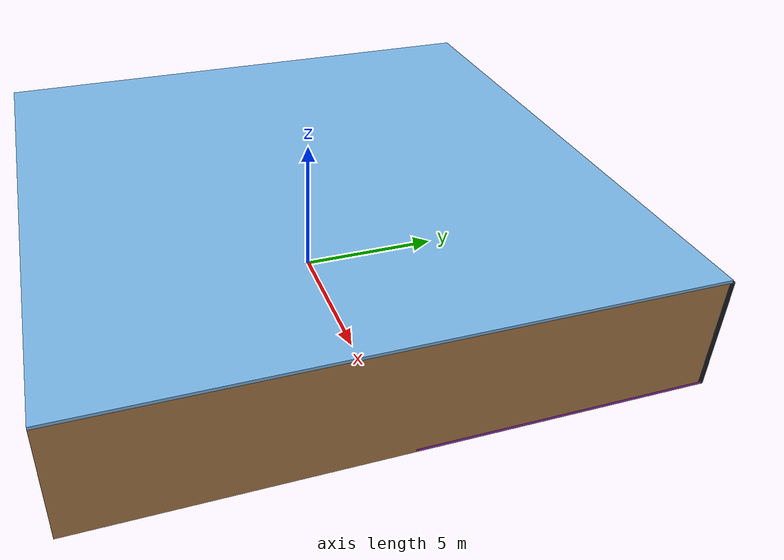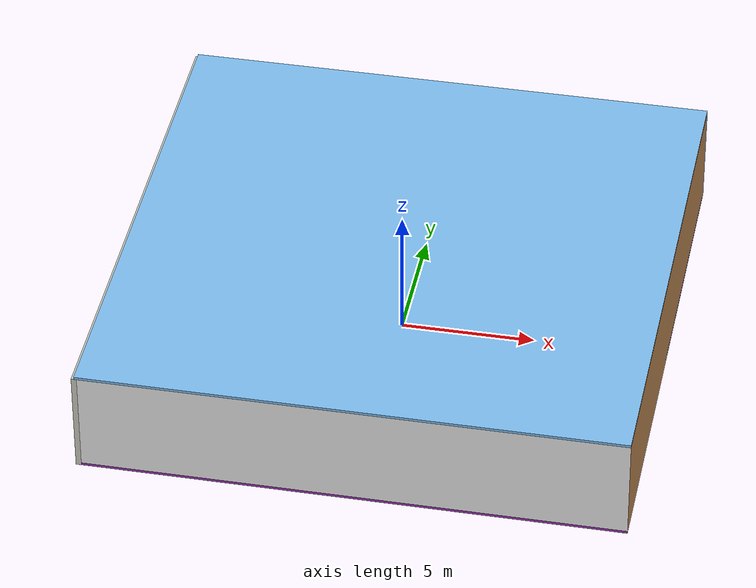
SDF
<sdf version="1.4">
 <world name="default">
  <physics type="ode">
   <max_step_size>0.001</max_step_size>
   <real_time_factor>1</real_time_factor>
   <real_time_update_rate>1000</real_time_update_rate>
   <gravity>0 0 -9.8</gravity>
  </physics>
  <scene><ambient>0.4 0.4 0.4 1</ambient><background>0.7 0.7 0.7 1</background><shadows>1</shadows></scene>
  <model name="Surrounding">
   <static>1</static>
   <link name="Ceiling">
    <collision name="Ceiling_Collision"><geometry><box><size>20 20 0.1</size></box></geometry></collision>
    <visual name="Ceiling_Visual">
     <geometry><box><size>20 20 0.1</size></box></geometry>
     <material>
      <script><uri>file://media/materials/scripts/gazebo.material</uri><name>Gazebo/SkyBlue</name></script>
     </material>
    </visual>
    <pose>0 0 4.05 0 0 0</pose>
   </link>
   <link name="Wall_South">
    <collision name="Wall_South_Collision">
     <geometry><box><size>20 0 4</size></box></geometry>
     <pose>0 0 2 0 -0 0</pose>
    </collision>
    <visual name="Wall_South_Visual">
     <pose>0 0 2 0 -0 0</pose>
     <geometry><box><size>20 0 4</size></box></geometry>
     <material>
      <script><uri>file://media/materials/scripts/gazebo.material</uri><name>Gazebo/WhiteGlow</name></script>
     </material>
    </visual>
    <velocity_decay><linear>0</linear><angular>0</angular></velocity_decay>
    <pose>0 -10 0 0 -0 0</pose>
   </link>
   <link name="Wall_East">
    <collision name="Wall_21_Collision">
     <geometry><box><size>20 0 4</size></box></geometry>
     <pose>0 0 2 0 -0 0</pose>
    </collision>
    <visual name="Wall_21_Visual">
     <pose>0 0 2 0 -0 0</pose>
     <geometry><box><size>20 0 4</size></box></geometry>
     <material>
      <script><uri>file://media/materials/scripts/gazebo.material</uri><name>Gazebo/WoodFloor</name></script>
     </material>
    </visual>
    <velocity_decay><linear>0</linear><angular>0</angular></velocity_decay>
    <pose>10 0 0 0 -0 1.5708</pose>
   </link>
   <link name="Wall_North">
    <collision name="Wall_22_Collision">
     <geometry><box><size>20 0.2 4</size></box></geometry>
     <pose>0 0 2 0 -0 0</pose>
    </collision>
    <visual name="Wall_22_Visual">
     <pose>0 0 2 0 -0 0</pose>
     <geometry><box><size>20 0.2 4</size></box></geometry>
     <material>
      <script><uri>file://media/materials/scripts/gazebo.material</uri><name>Gazebo/FlatBlack</name></script>
     </material>
    </visual>
    <velocity_decay><linear>0</linear><angular>0</angular></velocity_decay>
    <pose>0 10 0 0 -0 0</pose>
   </link>
   <link name="Wall_West">
    <collision name="Wall_23_Collision">
     <geometry><box><size>20 0.2 4</size></box></geometry>
     <pose>0 0 2 0 -0 0</pose>
    </collision>
    <visual name="Wall_23_Visual">
     <pose>0 0 2 0 -0 0</pose>
     <geometry><box><size>20 0.2 4</size></box></geometry>
     <material>
      <script><uri>file://media/materials/scripts/gazebo.material</uri><name>Gazebo/PaintedWall</name></script>
     </material>
    </visual>
    <velocity_decay><linear>0</linear><angular>0</angular></velocity_decay>
    <pose>-10 0 0 0 0 -1.5708</pose>
   </link>
   <link name="Ground_link">
    <collision name="collision">
     <pose>0 0 .05 0 -0 0</pose>
     <geometry><box><size>20 20 0.1</size></box></geometry>
    </collision>
    <visual name="visual">
     <pose>0 0 .05 0 -0 0</pose>
     <geometry><box><size>20 20 0.1</size></box></geometry>
     <material>
      <script><uri>file://media/materials/scripts/gazebo.material</uri><name>Gazebo/PurpleGlow</name></script>
     </material>
    </visual>
   </link>
   <static>1</static>
  </model>
  <spherical_coordinates>
   <surface_model>EARTH_WGS84</surface_model>
   <latitude_deg>0</latitude_deg>
   <longitude_deg>0</longitude_deg>
   <elevation>0</elevation>
   <heading_deg>0</heading_deg>
  </spherical_coordinates>
  <light name="lightball_0" type="diffuse">
   <diffuse>0.8 0.8 0.8 1</diffuse>
   <specular>0.2 0.2 0.2 1</specular>
   <attenuation>
    <range>100</range>
    <constant>0.7</constant>
    <linear>0.01</linear>
    <quadratic>0.001</quadratic>
   </attenuation>
   <direction>-0.5 0.1 -0.9</direction>
   <pose>-0.550574272522 -7.45947876374 3.20898791415 0 0 0</pose>
  </light>
  <light name="lightball_1" type="diffuse">
   <diffuse>0.8 0.8 0.8 1</diffuse>
   <specular>0.2 0.2 0.2 1</specular>
   <attenuation>
    <range>100</range>
    <constant>0.7</constant>
    <linear>0.01</linear>
    <quadratic>0.001</quadratic>
   </attenuation>
   <direction>-0.5 0.1 -0.9</direction>
   <pose>-7.28405487089 -5.91098380685 3.75709856421 0 0 0</pose>
  </light>
  <light name="lightball_2" type="diffuse">
   <diffuse>0.8 0.8 0.8 1</diffuse>
   <specular>0.2 0.2 0.2 1</specular>
   <attenuation>
    <range>100</range>
    <constant>0.7</constant>
    <linear>0.01</linear>
    <quadratic>0.001</quadratic>
   </attenuation>
   <direction>-0.5 0.1 -0.9</direction>
   <pose>-6.86796360736 7.26581619291 3.59218561548 0 0 0</pose>
  </light>
  <light name="lightball_3" type="diffuse">
   <diffuse>0.8 0.8 0.8 1</diffuse>
   <specular>0.2 0.2 0.2 1</specular>
   <attenuation>
    <range>100</range>
    <constant>0.7</constant>
    <linear>0.01</linear>
    <quadratic>0.001</quadratic>
   </attenuation>
   <direction>-0.5 0.1 -0.9</direction>
   <pose>-7.203709318 -0.342293540013 3.44426260071 0 0 0</pose>
  </light>
  <light name="lightball_4" type="diffuse">
   <diffuse>0.8 0.8 0.8 1</diffuse>
   <specular>0.2 0.2 0.2 1</specular>
   <attenuation>
    <range>100</range>
    <constant>0.7</constant>
    <linear>0.01</linear>
    <quadratic>0.001</quadratic>
   </attenuation>
   <direction>-0.5 0.1 -0.9</direction>
   <pose>-8.50986417996 -2.93418399372 2.43639743316 0 0 0</pose>
  </light>
  <light name="lightball_5" type="diffuse">
   <diffuse>0.8 0.8 0.8 1</diffuse>
   <specular>0.2 0.2 0.2 1</specular>
   <attenuation>
    <range>100</range>
    <constant>0.7</constant>
    <linear>0.01</linear>
    <quadratic>0.001</quadratic>
   </attenuation>
   <direction>-0.5 0.1 -0.9</direction>
   <pose>1.0524145392 6.63935421689 1.92854122609 0 0 0</pose>
  </light>
  <light name="lightball_6" type="diffuse">
   <diffuse>0.8 0.8 0.8 1</diffuse>
   <specular>0.2 0.2 0.2 1</specular>
   <attenuation>
    <range>100</range>
    <constant>0.7</constant>
    <linear>0.01</linear>
    <quadratic>0.001</quadratic>
   </attenuation>
   <direction>-0.5 0.1 -0.9</direction>
   <pose>-6.55919050154 0.19031545671 3.87255337644 0 0 0</pose>
  </light>
  <light name="lightball_7" type="diffuse">
   <diffuse>0.8 0.8 0.8 1</diffuse>
   <specular>0.2 0.2 0.2 1</specular>
   <attenuation>
    <range>100</range>
    <constant>0.7</constant>
    <linear>0.01</linear>
    <quadratic>0.001</quadratic>
   </attenuation>
   <direction>-0.5 0.1 -0.9</direction>
   <pose>-4.68940786326 6.16967999178 3.88864286229 0 0 0</pose>
  </light>
  <light name="lightball_8" type="diffuse">
   <diffuse>0.8 0.8 0.8 1</diffuse>
   <specular>0.2 0.2 0.2 1</specular>
   <attenuation>
    <range>100</range>
    <constant>0.7</constant>
    <linear>0.01</linear>
    <quadratic>0.001</quadratic>
   </attenuation>
   <direction>-0.5 0.1 -0.9</direction>
   <pose>2.59805306029 -2.73312075998 3.87049348142 0 0 0</pose>
  </light>
  <light name="lightball_9" type="diffuse">
   <diffuse>0.8 0.8 0.8 1</diffuse>
   <specular>0.2 0.2 0.2 1</specular>
   <attenuation>
    <range>100</range>
    <constant>0.7</constant>
    <linear>0.01</linear>
    <quadratic>0.001</quadratic>
   </attenuation>
   <direction>-0.5 0.1 -0.9</direction>
   <pose>5.57962920841 2.33541166195 3.77872848725 0 0 0</pose>
  </light>
  <include>
   <uri>model://robocup_3Dsim_goal</uri>
   <pose>-4.73632093596 -3.99554306047 0 0 0 0.49544653016</pose>
  </include>
  <include><uri>model://cabinet</uri><pose>-3.97571225305 0.939567650333 0 0 0 2.97082931182</pose></include>
  <include><uri>model://table</uri><pose>-1.80641860352 1.39322859959 0 0 0 2.74518236066</pose></include>
  <include><uri>model://table</uri><pose>-1.18691588618 3.75596917943 0 0 0 2.78135348928</pose></include>
  <include>
   <uri>model://construction_cone</uri>
   <pose>1.94212527271 1.07737432627 0 0 0 2.3728644955</pose>
  </include>
  <include>
   <uri>model://robocup_3Dsim_goal</uri>
   <pose>4.16542620101 0.983216630802 0 0 0 1.96870315607</pose>
  </include>
 </world>
</sdf>

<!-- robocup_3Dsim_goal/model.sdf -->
<sdf version="1.5">
  <model name="robocup_3d_goal">
    <static>true</static>
    <link name="left_post">
      <pose>0 1.05 0.45 0 0 0</pose>
      <collision name="collision">
        <geometry>
          <cylinder>
            <radius>0.05</radius>
            <length>0.9</length>
          </cylinder>
        </geometry>
      </collision>
      <visual name="visual">
        <geometry>
          <cylinder>
            <radius>0.05</radius>
            <length>0.9</length>
          </cylinder>
        </geometry>
        <material>
          <script>
            <uri>file://media/materials/scripts/gazebo.material</uri>
            <name>Gazebo/ZincYellow</name>
          </script>
        </material>
      </visual>
    </link>
    <link name="left_support_horiz_lower">
      <pose>0.30 1.05 0.01 0 0 0</pose>
      <collision name="collision">
        <geometry>
          <box>
            <size>0.50 0.02 0.02</size>
          </box>
        </geometry>
      </collision>
      <visual name="visual">
        <geometry>
          <box>
            <size>0.50 0.02 0.02</size>
          </box>
        </geometry>
        <material>
          <script>
            <uri>file://media/materials/scripts/gazebo.material</uri>
            <name>Gazebo/White</name>
          </script>
        </material>
      </visual>
    </link>
    <link name="left_support_horiz_upper">
      <pose>0.30 1.05 0.79 0 0 0</pose>
      <collision name="collision">
        <geometry>
          <box>
            <size>0.50 0.02 0.02</size>
          </box>
        </geometry>
      </collision>
      <visual name="visual">
        <geometry>
          <box>
            <size>0.50 0.02 0.02</size>
          </box>
        </geometry>
        <material>
          <script>
            <uri>file://media/materials/scripts/gazebo.material</uri>
            <name>Gazebo/White</name>
          </script>
        </material>
      </visual>
    </link>
    <link name="left_support_vertical">
      <pose>0.56 1.05 0.4 0 1.5708 0</pose>
      <collision name="collision">
        <geometry>
          <box>
            <size>0.80 0.02 0.02</size>
          </box>
        </geometry>
      </collision>
      <visual name="visual">
        <geometry>
          <box>
            <size>0.80 0.02 0.02</size>
          </box>
        </geometry>
        <material>
          <script>
            <uri>file://media/materials/scripts/gazebo.material</uri>
            <name>Gazebo/White</name>
          </script>
        </material>
      </visual>
    </link>
    <link name="right_support_horiz_lower">
      <pose>0.30 -1.05 0.01 0 0 0</pose>
      <collision name="collision">
        <geometry>
          <box>
            <size>0.50 0.02 0.02</size>
          </box>
        </geometry>
      </collision>
      <visual name="visual">
        <geometry>
          <box>
            <size>0.50 0.02 0.02</size>
          </box>
        </geometry>
        <material>
          <script>
            <uri>file://media/materials/scripts/gazebo.material</uri>
            <name>Gazebo/White</name>
          </script>
        </material>
      </visual>
    </link>
    <link name="right_support_horiz_upper">
      <pose>0.30 -1.05 0.79 0 0 0</pose>
      <collision name="collision">
        <geometry>
          <box>
            <size>0.50 0.02 0.02</size>
          </box>
        </geometry>
      </collision>
      <visual name="visual">
        <geometry>
          <box>
            <size>0.50 0.02 0.02</size>
          </box>
        </geometry>
        <material>
          <script>
            <uri>file://media/materials/scripts/gazebo.material</uri>
            <name>Gazebo/White</name>
          </script>
        </material>
      </visual>
    </link>
    <link name="right_support_vertical">
      <pose>0.56 -1.05 0.4 0 1.5708 0</pose>
      <collision name="collision">
        <geometry>
          <box>
            <size>0.80 0.02 0.02</size>
          </box>
        </geometry>
      </collision>
      <visual name="visual">
        <geometry>
          <box>
            <size>0.80 0.02 0.02</size>
          </box>
        </geometry>
        <material>
          <script>
            <uri>file://media/materials/scripts/gazebo.material</uri>
            <name>Gazebo/White</name>
          </script>
        </material>
      </visual>
    </link>
    <link name="center_support_horiz_lower">
      <pose>0.56 0 0.01 0 1.5708 0</pose>
      <collision name="collision">
        <geometry>
          <box>
            <size>0.02 2.08 0.02</size>
          </box>
        </geometry>
      </collision>
      <visual name="visual">
        <geometry>
          <box>
            <size>0.02 2.08 0.02</size>
          </box>
        </geometry>
        <material>
          <script>
            <uri>file://media/materials/scripts/gazebo.material</uri>
            <name>Gazebo/White</name>
          </script>
        </material>
      </visual>
    </link>
    <link name="center_support_horiz_upper">
      <pose>0.56 0 0.79 0 1.5708 0</pose>
      <collision name="collision">
        <geometry>
          <box>
            <size>0.02 2.08 0.02</size>
          </box>
        </geometry>
      </collision>
      <visual name="visual">
        <geometry>
          <box>
            <size>0.02 2.08 0.02</size>
          </box>
        </geometry>
        <material>
          <script>
            <uri>file://media/materials/scripts/gazebo.material</uri>
            <name>Gazebo/White</name>
          </script>
        </material>
      </visual>
    </link>
    <link name="right_post">
      <pose>0 -1.05 0.45 0 0 0</pose>
      <collision name="collision">
        <geometry>
          <cylinder>
            <radius>0.05</radius>
            <length>0.9</length>
          </cylinder>
        </geometry>
      </collision>
      <visual name="visual">
        <geometry>
          <cylinder>
            <radius>0.05</radius>
            <length>0.9</length>
          </cylinder>
        </geometry>
        <material>
          <script>
            <uri>file://media/materials/scripts/gazebo.material</uri>
            <name>Gazebo/ZincYellow</name>
          </script>
        </material>
      </visual>
    </link>
    <link name="crossbar">
      <pose>0 0 0.85 1.57 1.57 0</pose>
      <collision name="collision">
        <geometry>
          <cylinder>
            <radius>0.05</radius>
            <length>2.0</length>
          </cylinder>
        </geometry>
      </collision>
      <visual name="visual">
        <geometry>
          <cylinder>
            <radius>0.05</radius>
            <length>2.0</length>
          </cylinder>
        </geometry>
        <material>
          <script>
            <uri>file://media/materials/scripts/gazebo.material</uri>
            <name>Gazebo/ZincYellow</name>
          </script>
        </material>
      </visual>
    </link>
    <link name="center_net">
      <pose>0.56 0 0.40 0 0 0</pose>
      <collision name="collision">
        <geometry>
          <box>
            <size>0.01 2.1 0.80</size>
          </box>
        </geometry>
      </collision>
      <visual name="visual">
        <geometry>
          <box>
            <size>0.01 2.1 0.80</size>
          </box>
        </geometry>
        <material>
          <script>
            <uri>model://../model_source/models/robocup09_spl_field/materials/scripts/</uri>
            <uri>model://../model_source/models/robocup09_spl_field/materials/textures/</uri>
            <name>RoboCup/Net</name>
          </script>
        </material>
      </visual>
    </link>
    <link name="left_net">
      <pose>0.30 1.05 0.40 0 0 0</pose>
      <collision name="collision">
        <geometry>
          <box>
            <size>0.50 0.01 0.76</size>
          </box>
        </geometry>
      </collision>
      <visual name="visual">
        <geometry>
          <box>
            <size>0.50 0.01 0.76</size>
          </box>
        </geometry>
        <material>
          <script>
            <uri>model://../model_source/models/robocup09_spl_field/materials/scripts/</uri>
            <uri>model://../model_source/models/robocup09_spl_field/materials/textures/</uri>
            <name>RoboCup/Net</name>
          </script>
        </material>
      </visual>
    </link>
    <link name="right_net">
      <pose>0.30 -1.05 0.40 0 0 0</pose>
      <collision name="collision">
        <geometry>
          <box>
            <size>0.50 0.01 0.76</size>
          </box>
        </geometry>
      </collision>
      <visual name="visual">
        <geometry>
          <box>
            <size>0.50 0.01 0.76</size>
          </box>
        </geometry>
        <material>
          <script>
            <uri>model://../model_source/models/robocup09_spl_field/materials/scripts/</uri>
            <uri>model://../model_source/models/robocup09_spl_field/materials/textures/</uri>
            <name>RoboCup/Net</name>
          </script>
        </material>
      </visual>
    </link>
  </model>
</sdf>

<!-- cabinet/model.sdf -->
<sdf version="1.5">
  <model name="cabinet">
    <static>true</static>
    <link name="cabinet_bottom_plate">
      <inertial>
        <pose>0 0 -1 0 0 0</pose>
        <inertia>
          <ixx>2.050000</ixx>
          <ixy>0</ixy>
          <ixz>0</ixz>
          <iyy>2.050000</iyy>
          <iyz>0</iyz>
          <izz>2.050000</izz>
        </inertia>
        <mass>25.000000</mass>
      </inertial>
      <collision name="cabinet_bottom_plate_geom">
        <pose>0 0 0.010000 0 0 0</pose>
        <geometry>
          <box>
            <size>0.450000 0.450000 0.020000</size>
          </box>
        </geometry>
      </collision>
      <visual name="cabinet_bottom_plate_geom_visual">
        <pose>0 0 0.010000 0 0 0</pose>
        <geometry>
          <box>
            <size>0.450000 0.450000 0.020000</size>
          </box>
        </geometry>
        <material>
          <script>
            <uri>model://media/materials/scripts/gazebo.material</uri>
            <name>Gazebo/Wood</name>
          </script>
        </material>
      </visual>
      <collision name="cabinet_bottom_plate_geom_cabinet_back_plate">
        <pose>0.235000 0 0.510000 0 0 0</pose>
        <geometry>
          <box>
            <size>0.020000 0.450000 1.020000</size>
          </box>
        </geometry>
      </collision>
      <visual name="cabinet_bottom_plate_geom_cabinet_back_plate_visual">
        <pose>0.235000 0 0.510000 0 0 0</pose>
        <geometry>
          <box>
            <size>0.020000 0.450000 1.020000</size>
          </box>
        </geometry>
        <material>
          <script>
            <uri>model://media/materials/scripts/gazebo.material</uri>
            <name>Gazebo/Wood</name>
          </script>
        </material>
      </visual>
      <collision name="cabinet_bottom_plate_geom_cabinet_left_plate">
        <pose>0 0.235000 0.510000 0 0 0</pose>
        <geometry>
          <box>
            <size>0.450000 0.020000 1.020000</size>
          </box>
        </geometry>
      </collision>
      <visual name="cabinet_bottom_plate_geom_cabinet_left_plate_visual">
        <pose>0 0.235000 0.510000 0 0 0</pose>
        <geometry>
          <box>
            <size>0.450000 0.020000 1.020000</size>
          </box>
        </geometry>
        <material>
          <script>
            <uri>model://media/materials/scripts/gazebo.material</uri>
            <name>Gazebo/Wood</name>
          </script>
        </material>
      </visual>
      <collision name="cabinet_bottom_plate_geom_cabinet_middle_plate">
        <pose>0 0 0.510000 0 0 0</pose>
        <geometry>
          <box>
            <size>0.450000 0.450000 0.020000</size>
          </box>
        </geometry>
      </collision>
      <visual name="cabinet_bottom_plate_geom_cabinet_middle_plate_visual">
        <pose>0 0 0.510000 0 0 0</pose>
        <geometry>
          <box>
            <size>0.450000 0.450000 0.020000</size>
          </box>
        </geometry>
        <material>
          <script>
            <uri>model://media/materials/scripts/gazebo.material</uri>
            <name>Gazebo/Wood</name>
          </script>
        </material>
      </visual>
      <collision name="cabinet_bottom_plate_geom_cabinet_right_plate">
        <pose>0 -0.235000 0.510000 0 0 0</pose>
        <geometry>
          <box>
            <size>0.450000 0.020000 1.020000</size>
          </box>
        </geometry>
      </collision>
      <visual name="cabinet_bottom_plate_geom_cabinet_right_plate_visual">
        <pose>0 -0.235000 0.510000 0 0 0</pose>
        <geometry>
          <box>
            <size>0.450000 0.020000 1.020000</size>
          </box>
        </geometry>
        <material>
          <script>
            <uri>model://media/materials/scripts/gazebo.material</uri>
            <name>Gazebo/Wood</name>
          </script>
        </material>
      </visual>
      <collision name="cabinet_bottom_plate_geom_cabinet_top_plate">
        <pose>0 0 1.010000 0 0 0</pose>
        <geometry>
          <box>
            <size>0.450000 0.450000 0.020000</size>
          </box>
        </geometry>
      </collision>
      <visual name="cabinet_bottom_plate_geom_cabinet_top_plate_visual">
        <pose>0 0 1.010000 0 0 0</pose>
        <geometry>
          <box>
            <size>0.450000 0.450000 0.020000</size>
          </box>
        </geometry>
        <material>
          <script>
            <uri>model://media/materials/scripts/gazebo.material</uri>
            <name>Gazebo/Wood</name>
          </script>
        </material>
      </visual>
    </link>
  </model>
</sdf>

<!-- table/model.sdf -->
<sdf version="1.5">
  <model name="table">
    <static>true</static>
    <link name="link">
      <collision name="surface">
        <pose>0 0 1.0 0 0 0</pose>
        <geometry>
          <box>
            <size>1.5 0.8 0.03</size>
          </box>
        </geometry>
        <surface>
          <friction>
            <ode>
              <mu>0.6</mu>
              <mu2>0.6</mu2>
            </ode>
          </friction>
        </surface>
      </collision>
      <visual name="visual1">
        <pose>0 0 1.0 0 0 0</pose>
        <geometry>
          <box>
            <size>1.5 0.8 0.03</size>
          </box>
        </geometry>
        <material>
          <script>
            <uri>model://media/materials/scripts/gazebo.material</uri>
            <name>Gazebo/Wood</name>
          </script>
        </material>
      </visual>
      <collision name="front_left_leg">
        <pose>0.68 0.38 0.5 0 0 0</pose>
        <geometry>
          <cylinder>
            <radius>0.02</radius>
            <length>1.0</length>
          </cylinder>
        </geometry>
      </collision>
      <visual name="front_left_leg">
        <pose>0.68 0.38 0.5 0 0 0</pose>
        <geometry>
          <cylinder>
            <radius>0.02</radius>
            <length>1.0</length>
          </cylinder>
        </geometry>
        <material>
          <script>
            <uri>model://media/materials/scripts/gazebo.material</uri>
            <name>Gazebo/Grey</name>
          </script>
        </material>
      </visual>
      <collision name="front_right_leg">
        <pose>0.68 -0.38 0.5 0 0 0</pose>
        <geometry>
          <cylinder>
            <radius>0.02</radius>
            <length>1.0</length>
          </cylinder>
        </geometry>
      </collision>
      <visual name="front_right_leg">
        <pose>0.68 -0.38 0.5 0 0 0</pose>
        <geometry>
          <cylinder>
            <radius>0.02</radius>
            <length>1.0</length>
          </cylinder>
        </geometry>
        <material>
          <script>
            <uri>model://media/materials/scripts/gazebo.material</uri>
            <name>Gazebo/Grey</name>
          </script>
        </material>
      </visual>
      <collision name="back_right_leg">
        <pose>-0.68 -0.38 0.5 0 0 0</pose>
        <geometry>
          <cylinder>
            <radius>0.02</radius>
            <length>1.0</length>
          </cylinder>
        </geometry>
      </collision>
      <visual name="back_right_leg">
        <pose>-0.68 -0.38 0.5 0 0 0</pose>
        <geometry>
          <cylinder>
            <radius>0.02</radius>
            <length>1.0</length>
          </cylinder>
        </geometry>
        <material>
          <script>
            <uri>model://media/materials/scripts/gazebo.material</uri>
            <name>Gazebo/Grey</name>
          </script>
        </material>
      </visual>
      <collision name="back_left_leg">
        <pose>-0.68 0.38 0.5 0 0 0</pose>
        <geometry>
          <cylinder>
            <radius>0.02</radius>
            <length>1.0</length>
          </cylinder>
        </geometry>
      </collision>
      <visual name="back_left_leg">
        <pose>-0.68 0.38 0.5 0 0 0</pose>
        <geometry>
          <cylinder>
            <radius>0.02</radius>
            <length>1.0</length>
          </cylinder>
        </geometry>
        <material>
          <script>
            <uri>model://media/materials/scripts/gazebo.material</uri>
            <name>Gazebo/Grey</name>
          </script>
        </material>
      </visual>
    </link>
  </model>
</sdf>

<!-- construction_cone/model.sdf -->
<sdf version="1.5">
  <model name="Construction Cone">
    <link name="link">
      <collision name="collision">
        <geometry>
          <mesh>
            <scale>10 10 10</scale>
            <uri>file://isr-testbed/construction_cone/meshes/construction_cone.dae</uri>
          </mesh>
        </geometry>
      </collision>
      <visual name="visual">
        <geometry>
          <mesh>
            <scale>10 10 10</scale>
            <uri>file://isr-testbed/construction_cone/meshes/construction_cone.dae</uri>
          </mesh>
        </geometry>
      </visual>
    </link>
  </model>
</sdf>
